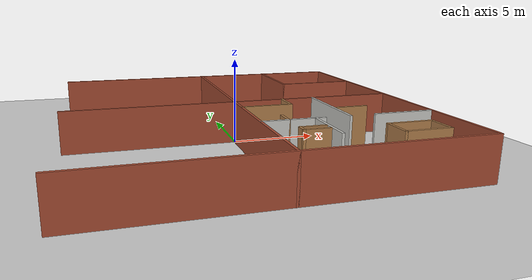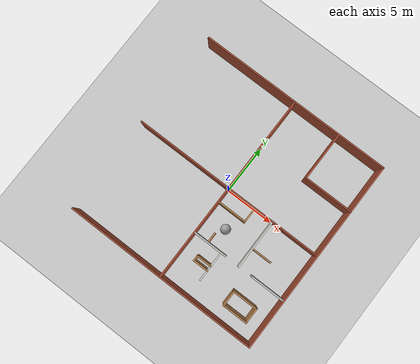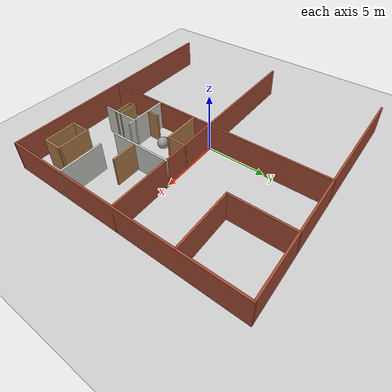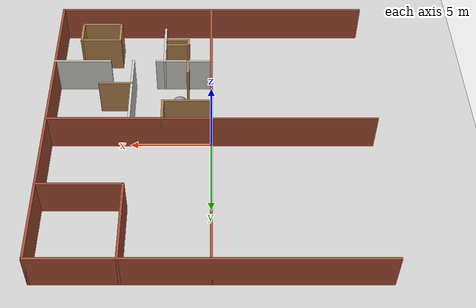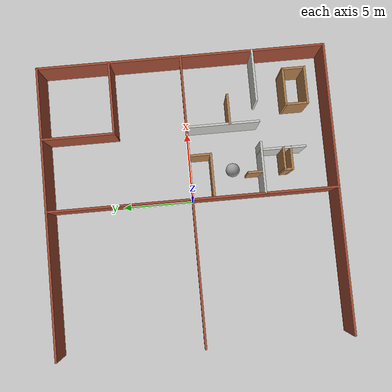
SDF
<sdf version="1.7">
 <world name="default">
  <model name="ground_plane">
   <static>1</static>
   <link name="link">
    <collision name="collision">
     <geometry><plane><normal>0 0 1</normal><size>100 100</size></plane></geometry>
     <surface>
      <contact><collide_bitmask>65535</collide_bitmask></contact>
      <friction><ode><mu>100</mu><mu2>50</mu2></ode></friction>
     </surface>
    </collision>
    <visual name="visual">
     <cast_shadows>0</cast_shadows>
     <geometry><plane><normal>0 0 1</normal><size>100 100</size></plane></geometry>
     <material>
      <script><uri>file://media/materials/scripts/gazebo.material</uri><name>Gazebo/Grey</name></script>
     </material>
    </visual>
   </link>
  </model>
  <model name="Room_Curriculum">
   <link name="Wall_0">
    <pose>0 10 0 0 -0 0</pose>
    <visual name="Wall_0_Visual">
     <pose>0 0 1.25 0 -0 0</pose>
     <geometry><box><size>20.15 0.15 2.5</size></box></geometry>
     <material>
      <script><uri>file://media/materials/scripts/gazebo.material</uri><name>Gazebo/Bricks</name></script>
      <ambient>1 1 1 1</ambient>
      <shader type="pixel"/>
     </material>
     <meta><layer>0</layer></meta>
    </visual>
    <collision name="Wall_0_Collision">
     <pose>0 0 1.25 0 -0 0</pose>
     <geometry><box><size>20.15 0.15 2.5</size></box></geometry>
     <surface>
      <friction>
       <ode><mu>1</mu><mu2>1</mu2><fdir1>0 0 0</fdir1><slip1>0</slip1><slip2>0</slip2></ode>
       <torsional>
        <coefficient>1</coefficient>
        <patch_radius>0</patch_radius>
        <surface_radius>0</surface_radius>
        <use_patch_radius>1</use_patch_radius>
        <ode><slip>0</slip></ode>
       </torsional>
      </friction>
      <bounce><restitution_coefficient>0</restitution_coefficient><threshold>1e+06</threshold></bounce>
      <contact>
       <collide_without_contact>0</collide_without_contact>
       <collide_without_contact_bitmask>1</collide_without_contact_bitmask>
       <collide_bitmask>1</collide_bitmask>
       <ode>
        <soft_cfm>0</soft_cfm>
        <soft_erp>0.2</soft_erp>
        <kp>1e+13</kp>
        <kd>1</kd>
        <max_vel>0.01</max_vel>
        <min_depth>0</min_depth>
       </ode>
       <bullet>
        <split_impulse>1</split_impulse>
        <split_impulse_penetration_threshold>-0.01</split_impulse_penetration_threshold>
        <soft_cfm>0</soft_cfm>
        <soft_erp>0.2</soft_erp>
        <kp>1e+13</kp>
        <kd>1</kd>
       </bullet>
      </contact>
     </surface>
    </collision>
   </link>
   <link name="Wall_1">
    <pose>10 0 0 0 0 -1.5708</pose>
    <visual name="Wall_1_Visual">
     <pose>0 0 1.25 0 -0 0</pose>
     <geometry><box><size>20.15 0.15 2.5</size></box></geometry>
     <material>
      <script><uri>file://media/materials/scripts/gazebo.material</uri><name>Gazebo/Bricks</name></script>
      <ambient>1 1 1 1</ambient>
      <shader type="pixel"/>
     </material>
     <meta><layer>0</layer></meta>
    </visual>
    <collision name="Wall_1_Collision">
     <pose>0 0 1.25 0 -0 0</pose>
     <geometry><box><size>20.15 0.15 2.5</size></box></geometry>
     <surface>
      <friction>
       <ode><mu>1</mu><mu2>1</mu2><fdir1>0 0 0</fdir1><slip1>0</slip1><slip2>0</slip2></ode>
       <torsional>
        <coefficient>1</coefficient>
        <patch_radius>0</patch_radius>
        <surface_radius>0</surface_radius>
        <use_patch_radius>1</use_patch_radius>
        <ode><slip>0</slip></ode>
       </torsional>
      </friction>
      <bounce><restitution_coefficient>0</restitution_coefficient><threshold>1e+06</threshold></bounce>
      <contact>
       <collide_without_contact>0</collide_without_contact>
       <collide_without_contact_bitmask>1</collide_without_contact_bitmask>
       <collide_bitmask>1</collide_bitmask>
       <ode>
        <soft_cfm>0</soft_cfm>
        <soft_erp>0.2</soft_erp>
        <kp>1e+13</kp>
        <kd>1</kd>
        <max_vel>0.01</max_vel>
        <min_depth>0</min_depth>
       </ode>
       <bullet>
        <split_impulse>1</split_impulse>
        <split_impulse_penetration_threshold>-0.01</split_impulse_penetration_threshold>
        <soft_cfm>0</soft_cfm>
        <soft_erp>0.2</soft_erp>
        <kp>1e+13</kp>
        <kd>1</kd>
       </bullet>
      </contact>
     </surface>
    </collision>
   </link>
   <link name="Wall_15">
    <pose>5 7.5 0 0 0 -1.5708</pose>
    <visual name="Wall_15_Visual">
     <pose>0 0 1.25 0 -0 0</pose>
     <geometry><box><size>5.15 0.15 2.5</size></box></geometry>
     <material>
      <script><uri>file://media/materials/scripts/gazebo.material</uri><name>Gazebo/Bricks</name></script>
      <ambient>1 1 1 1</ambient>
      <shader type="pixel"/>
     </material>
     <meta><layer>0</layer></meta>
    </visual>
    <collision name="Wall_15_Collision">
     <pose>0 0 1.25 0 -0 0</pose>
     <geometry><box><size>5.15 0.15 2.5</size></box></geometry>
     <surface>
      <friction>
       <ode><mu>1</mu><mu2>1</mu2><fdir1>0 0 0</fdir1><slip1>0</slip1><slip2>0</slip2></ode>
       <torsional>
        <coefficient>1</coefficient>
        <patch_radius>0</patch_radius>
        <surface_radius>0</surface_radius>
        <use_patch_radius>1</use_patch_radius>
        <ode><slip>0</slip></ode>
       </torsional>
      </friction>
      <bounce><restitution_coefficient>0</restitution_coefficient><threshold>1e+06</threshold></bounce>
      <contact>
       <collide_without_contact>0</collide_without_contact>
       <collide_without_contact_bitmask>1</collide_without_contact_bitmask>
       <collide_bitmask>1</collide_bitmask>
       <ode>
        <soft_cfm>0</soft_cfm>
        <soft_erp>0.2</soft_erp>
        <kp>1e+13</kp>
        <kd>1</kd>
        <max_vel>0.01</max_vel>
        <min_depth>0</min_depth>
       </ode>
       <bullet>
        <split_impulse>1</split_impulse>
        <split_impulse_penetration_threshold>-0.01</split_impulse_penetration_threshold>
        <soft_cfm>0</soft_cfm>
        <soft_erp>0.2</soft_erp>
        <kp>1e+13</kp>
        <kd>1</kd>
       </bullet>
      </contact>
     </surface>
    </collision>
   </link>
   <link name="Wall_16">
    <pose>7.5 5 0 0 -0 0</pose>
    <visual name="Wall_16_Visual">
     <pose>0 0 1.25 0 -0 0</pose>
     <geometry><box><size>5.15 0.15 2.5</size></box></geometry>
     <material>
      <script><uri>file://media/materials/scripts/gazebo.material</uri><name>Gazebo/Bricks</name></script>
      <ambient>1 1 1 1</ambient>
      <shader type="pixel"/>
     </material>
     <meta><layer>0</layer></meta>
    </visual>
    <collision name="Wall_16_Collision">
     <pose>0 0 1.25 0 -0 0</pose>
     <geometry><box><size>5.15 0.15 2.5</size></box></geometry>
     <surface>
      <friction>
       <ode><mu>1</mu><mu2>1</mu2><fdir1>0 0 0</fdir1><slip1>0</slip1><slip2>0</slip2></ode>
       <torsional>
        <coefficient>1</coefficient>
        <patch_radius>0</patch_radius>
        <surface_radius>0</surface_radius>
        <use_patch_radius>1</use_patch_radius>
        <ode><slip>0</slip></ode>
       </torsional>
      </friction>
      <bounce><restitution_coefficient>0</restitution_coefficient><threshold>1e+06</threshold></bounce>
      <contact>
       <collide_without_contact>0</collide_without_contact>
       <collide_without_contact_bitmask>1</collide_without_contact_bitmask>
       <collide_bitmask>1</collide_bitmask>
       <ode>
        <soft_cfm>0</soft_cfm>
        <soft_erp>0.2</soft_erp>
        <kp>1e+13</kp>
        <kd>1</kd>
        <max_vel>0.01</max_vel>
        <min_depth>0</min_depth>
       </ode>
       <bullet>
        <split_impulse>1</split_impulse>
        <split_impulse_penetration_threshold>-0.01</split_impulse_penetration_threshold>
        <soft_cfm>0</soft_cfm>
        <soft_erp>0.2</soft_erp>
        <kp>1e+13</kp>
        <kd>1</kd>
       </bullet>
      </contact>
     </surface>
    </collision>
   </link>
   <link name="Wall_2">
    <pose>0 -10 0 0 -0 3.14159</pose>
    <visual name="Wall_2_Visual">
     <pose>0 0 1.25 0 -0 0</pose>
     <geometry><box><size>20.15 0.15 2.5</size></box></geometry>
     <material>
      <script><uri>file://media/materials/scripts/gazebo.material</uri><name>Gazebo/Bricks</name></script>
      <ambient>1 1 1 1</ambient>
      <shader type="pixel"/>
     </material>
     <meta><layer>0</layer></meta>
    </visual>
    <collision name="Wall_2_Collision">
     <pose>0 0 1.25 0 -0 0</pose>
     <geometry><box><size>20.15 0.15 2.5</size></box></geometry>
     <surface>
      <friction>
       <ode><mu>1</mu><mu2>1</mu2><fdir1>0 0 0</fdir1><slip1>0</slip1><slip2>0</slip2></ode>
       <torsional>
        <coefficient>1</coefficient>
        <patch_radius>0</patch_radius>
        <surface_radius>0</surface_radius>
        <use_patch_radius>1</use_patch_radius>
        <ode><slip>0</slip></ode>
       </torsional>
      </friction>
      <bounce><restitution_coefficient>0</restitution_coefficient><threshold>1e+06</threshold></bounce>
      <contact>
       <collide_without_contact>0</collide_without_contact>
       <collide_without_contact_bitmask>1</collide_without_contact_bitmask>
       <collide_bitmask>1</collide_bitmask>
       <ode>
        <soft_cfm>0</soft_cfm>
        <soft_erp>0.2</soft_erp>
        <kp>1e+13</kp>
        <kd>1</kd>
        <max_vel>0.01</max_vel>
        <min_depth>0</min_depth>
       </ode>
       <bullet>
        <split_impulse>1</split_impulse>
        <split_impulse_penetration_threshold>-0.01</split_impulse_penetration_threshold>
        <soft_cfm>0</soft_cfm>
        <soft_erp>0.2</soft_erp>
        <kp>1e+13</kp>
        <kd>1</kd>
       </bullet>
      </contact>
     </surface>
    </collision>
   </link>
   <link name="Wall_5">
    <pose>0 0 0 0 0 -1.5708</pose>
    <visual name="Wall_5_Visual">
     <pose>0 0 1.25 0 -0 0</pose>
     <geometry><box><size>20.15 0.15 2.5</size></box></geometry>
     <material>
      <script><uri>file://media/materials/scripts/gazebo.material</uri><name>Gazebo/Bricks</name></script>
      <ambient>1 1 1 1</ambient>
      <shader type="pixel"/>
     </material>
     <meta><layer>0</layer></meta>
    </visual>
    <collision name="Wall_5_Collision">
     <pose>0 0 1.25 0 -0 0</pose>
     <geometry><box><size>20.15 0.15 2.5</size></box></geometry>
     <surface>
      <friction>
       <ode><mu>1</mu><mu2>1</mu2><fdir1>0 0 0</fdir1><slip1>0</slip1><slip2>0</slip2></ode>
       <torsional>
        <coefficient>1</coefficient>
        <patch_radius>0</patch_radius>
        <surface_radius>0</surface_radius>
        <use_patch_radius>1</use_patch_radius>
        <ode><slip>0</slip></ode>
       </torsional>
      </friction>
      <bounce><restitution_coefficient>0</restitution_coefficient><threshold>1e+06</threshold></bounce>
      <contact>
       <collide_without_contact>0</collide_without_contact>
       <collide_without_contact_bitmask>1</collide_without_contact_bitmask>
       <collide_bitmask>1</collide_bitmask>
       <ode>
        <soft_cfm>0</soft_cfm>
        <soft_erp>0.2</soft_erp>
        <kp>1e+13</kp>
        <kd>1</kd>
        <max_vel>0.01</max_vel>
        <min_depth>0</min_depth>
       </ode>
       <bullet>
        <split_impulse>1</split_impulse>
        <split_impulse_penetration_threshold>-0.01</split_impulse_penetration_threshold>
        <soft_cfm>0</soft_cfm>
        <soft_erp>0.2</soft_erp>
        <kp>1e+13</kp>
        <kd>1</kd>
       </bullet>
      </contact>
     </surface>
    </collision>
   </link>
   <link name="Wall_52">
    <pose>5 -2.5 0 0 0 -1.5708</pose>
    <visual name="Wall_52_Visual">
     <pose>0 0 1.25 0 -0 0</pose>
     <geometry><box><size>5.15 0.15 2.5</size></box></geometry>
     <material>
      <script><uri>file://media/materials/scripts/gazebo.material</uri><name>Gazebo/CeilingTiled</name></script>
      <ambient>1 1 1 1</ambient>
      <shader type="pixel"/>
     </material>
     <meta><layer>0</layer></meta>
    </visual>
    <collision name="Wall_52_Collision">
     <pose>0 0 1.25 0 -0 0</pose>
     <geometry><box><size>5.15 0.15 2.5</size></box></geometry>
     <surface>
      <friction>
       <ode><mu>1</mu><mu2>1</mu2><fdir1>0 0 0</fdir1><slip1>0</slip1><slip2>0</slip2></ode>
       <torsional>
        <coefficient>1</coefficient>
        <patch_radius>0</patch_radius>
        <surface_radius>0</surface_radius>
        <use_patch_radius>1</use_patch_radius>
        <ode><slip>0</slip></ode>
       </torsional>
      </friction>
      <bounce><restitution_coefficient>0</restitution_coefficient><threshold>1e+06</threshold></bounce>
      <contact>
       <collide_without_contact>0</collide_without_contact>
       <collide_without_contact_bitmask>1</collide_without_contact_bitmask>
       <collide_bitmask>1</collide_bitmask>
       <ode>
        <soft_cfm>0</soft_cfm>
        <soft_erp>0.2</soft_erp>
        <kp>1e+13</kp>
        <kd>1</kd>
        <max_vel>0.01</max_vel>
        <min_depth>0</min_depth>
       </ode>
       <bullet>
        <split_impulse>1</split_impulse>
        <split_impulse_penetration_threshold>-0.01</split_impulse_penetration_threshold>
        <soft_cfm>0</soft_cfm>
        <soft_erp>0.2</soft_erp>
        <kp>1e+13</kp>
        <kd>1</kd>
       </bullet>
      </contact>
     </surface>
    </collision>
   </link>
   <link name="Wall_54">
    <pose>6 -3 0 0 -0 0</pose>
    <visual name="Wall_54_Visual">
     <pose>0 0 1.25 0 -0 0</pose>
     <geometry><box><size>2.15 0.15 2.5</size></box></geometry>
     <material>
      <script><uri>file://media/materials/scripts/gazebo.material</uri><name>Gazebo/Wood</name></script>
      <ambient>1 1 1 1</ambient>
      <shader type="pixel"/>
     </material>
     <meta><layer>0</layer></meta>
    </visual>
    <collision name="Wall_54_Collision">
     <pose>0 0 1.25 0 -0 0</pose>
     <geometry><box><size>2.15 0.15 2.5</size></box></geometry>
     <surface>
      <friction>
       <ode><mu>1</mu><mu2>1</mu2><fdir1>0 0 0</fdir1><slip1>0</slip1><slip2>0</slip2></ode>
       <torsional>
        <coefficient>1</coefficient>
        <patch_radius>0</patch_radius>
        <surface_radius>0</surface_radius>
        <use_patch_radius>1</use_patch_radius>
        <ode><slip>0</slip></ode>
       </torsional>
      </friction>
      <bounce><restitution_coefficient>0</restitution_coefficient><threshold>1e+06</threshold></bounce>
      <contact>
       <collide_without_contact>0</collide_without_contact>
       <collide_without_contact_bitmask>1</collide_without_contact_bitmask>
       <collide_bitmask>1</collide_bitmask>
       <ode>
        <soft_cfm>0</soft_cfm>
        <soft_erp>0.2</soft_erp>
        <kp>1e+13</kp>
        <kd>1</kd>
        <max_vel>0.01</max_vel>
        <min_depth>0</min_depth>
       </ode>
       <bullet>
        <split_impulse>1</split_impulse>
        <split_impulse_penetration_threshold>-0.01</split_impulse_penetration_threshold>
        <soft_cfm>0</soft_cfm>
        <soft_erp>0.2</soft_erp>
        <kp>1e+13</kp>
        <kd>1</kd>
       </bullet>
      </contact>
     </surface>
    </collision>
   </link>
   <link name="Wall_59">
    <pose>1.75 -5 0 0 -0 0</pose>
    <visual name="Wall_59_Visual">
     <pose>0 0 1.25 0 -0 0</pose>
     <geometry><box><size>3.65 0.15 2.5</size></box></geometry>
     <material>
      <script><uri>file://media/materials/scripts/gazebo.material</uri><name>Gazebo/CeilingTiled</name></script>
      <ambient>1 1 1 1</ambient>
      <shader type="pixel"/>
     </material>
     <meta><layer>0</layer></meta>
    </visual>
    <collision name="Wall_59_Collision">
     <pose>0 0 1.25 0 -0 0</pose>
     <geometry><box><size>3.65 0.15 2.5</size></box></geometry>
     <surface>
      <friction>
       <ode><mu>1</mu><mu2>1</mu2><fdir1>0 0 0</fdir1><slip1>0</slip1><slip2>0</slip2></ode>
       <torsional>
        <coefficient>1</coefficient>
        <patch_radius>0</patch_radius>
        <surface_radius>0</surface_radius>
        <use_patch_radius>1</use_patch_radius>
        <ode><slip>0</slip></ode>
       </torsional>
      </friction>
      <bounce><restitution_coefficient>0</restitution_coefficient><threshold>1e+06</threshold></bounce>
      <contact>
       <collide_without_contact>0</collide_without_contact>
       <collide_without_contact_bitmask>1</collide_without_contact_bitmask>
       <collide_bitmask>1</collide_bitmask>
       <ode>
        <soft_cfm>0</soft_cfm>
        <soft_erp>0.2</soft_erp>
        <kp>1e+13</kp>
        <kd>1</kd>
        <max_vel>0.01</max_vel>
        <min_depth>0</min_depth>
       </ode>
       <bullet>
        <split_impulse>1</split_impulse>
        <split_impulse_penetration_threshold>-0.01</split_impulse_penetration_threshold>
        <soft_cfm>0</soft_cfm>
        <soft_erp>0.2</soft_erp>
        <kp>1e+13</kp>
        <kd>1</kd>
       </bullet>
      </contact>
     </surface>
    </collision>
   </link>
   <link name="Wall_61">
    <pose>8.25 -5 0 0 -0 3.14159</pose>
    <visual name="Wall_61_Visual">
     <pose>0 0 1.25 0 -0 0</pose>
     <geometry><box><size>3.65 0.15 2.5</size></box></geometry>
     <material>
      <script><uri>file://media/materials/scripts/gazebo.material</uri><name>Gazebo/CeilingTiled</name></script>
      <ambient>1 1 1 1</ambient>
      <shader type="pixel"/>
     </material>
     <meta><layer>0</layer></meta>
    </visual>
    <collision name="Wall_61_Collision">
     <pose>0 0 1.25 0 -0 0</pose>
     <geometry><box><size>3.65 0.15 2.5</size></box></geometry>
     <surface>
      <friction>
       <ode><mu>1</mu><mu2>1</mu2><fdir1>0 0 0</fdir1><slip1>0</slip1><slip2>0</slip2></ode>
       <torsional>
        <coefficient>1</coefficient>
        <patch_radius>0</patch_radius>
        <surface_radius>0</surface_radius>
        <use_patch_radius>1</use_patch_radius>
        <ode><slip>0</slip></ode>
       </torsional>
      </friction>
      <bounce><restitution_coefficient>0</restitution_coefficient><threshold>1e+06</threshold></bounce>
      <contact>
       <collide_without_contact>0</collide_without_contact>
       <collide_without_contact_bitmask>1</collide_without_contact_bitmask>
       <collide_bitmask>1</collide_bitmask>
       <ode>
        <soft_cfm>0</soft_cfm>
        <soft_erp>0.2</soft_erp>
        <kp>1e+13</kp>
        <kd>1</kd>
        <max_vel>0.01</max_vel>
        <min_depth>0</min_depth>
       </ode>
       <bullet>
        <split_impulse>1</split_impulse>
        <split_impulse_penetration_threshold>-0.01</split_impulse_penetration_threshold>
        <soft_cfm>0</soft_cfm>
        <soft_erp>0.2</soft_erp>
        <kp>1e+13</kp>
        <kd>1</kd>
       </bullet>
      </contact>
     </surface>
    </collision>
   </link>
   <link name="Wall_63">
    <pose>1.5 -4.5 0 0 0 -1.5708</pose>
    <visual name="Wall_63_Visual">
     <pose>0 0 1.25 0 -0 0</pose>
     <geometry><box><size>1.15 0.15 2.5</size></box></geometry>
     <material>
      <script><uri>file://media/materials/scripts/gazebo.material</uri><name>Gazebo/Wood</name></script>
      <ambient>1 1 1 1</ambient>
      <shader type="pixel"/>
     </material>
     <meta><layer>0</layer></meta>
    </visual>
    <collision name="Wall_63_Collision">
     <pose>0 0 1.25 0 -0 0</pose>
     <geometry><box><size>1.15 0.15 2.5</size></box></geometry>
     <surface>
      <friction>
       <ode><mu>1</mu><mu2>1</mu2><fdir1>0 0 0</fdir1><slip1>0</slip1><slip2>0</slip2></ode>
       <torsional>
        <coefficient>1</coefficient>
        <patch_radius>0</patch_radius>
        <surface_radius>0</surface_radius>
        <use_patch_radius>1</use_patch_radius>
        <ode><slip>0</slip></ode>
       </torsional>
      </friction>
      <bounce><restitution_coefficient>0</restitution_coefficient><threshold>1e+06</threshold></bounce>
      <contact>
       <collide_without_contact>0</collide_without_contact>
       <collide_without_contact_bitmask>1</collide_without_contact_bitmask>
       <collide_bitmask>1</collide_bitmask>
       <ode>
        <soft_cfm>0</soft_cfm>
        <soft_erp>0.2</soft_erp>
        <kp>1e+13</kp>
        <kd>1</kd>
        <max_vel>0.01</max_vel>
        <min_depth>0</min_depth>
       </ode>
       <bullet>
        <split_impulse>1</split_impulse>
        <split_impulse_penetration_threshold>-0.01</split_impulse_penetration_threshold>
        <soft_cfm>0</soft_cfm>
        <soft_erp>0.2</soft_erp>
        <kp>1e+13</kp>
        <kd>1</kd>
       </bullet>
      </contact>
     </surface>
    </collision>
   </link>
   <link name="Wall_65">
    <pose>3 -6.5 0 0 0 -1.5708</pose>
    <visual name="Wall_65_Visual">
     <pose>0 0 1.25 0 -0 0</pose>
     <geometry><box><size>3.15 0.15 2.5</size></box></geometry>
     <material>
      <script><uri>file://media/materials/scripts/gazebo.material</uri><name>Gazebo/CeilingTiled</name></script>
      <ambient>1 1 1 1</ambient>
      <shader type="pixel"/>
     </material>
     <meta><layer>0</layer></meta>
    </visual>
    <collision name="Wall_65_Collision">
     <pose>0 0 1.25 0 -0 0</pose>
     <geometry><box><size>3.15 0.15 2.5</size></box></geometry>
     <surface>
      <friction>
       <ode><mu>1</mu><mu2>1</mu2><fdir1>0 0 0</fdir1><slip1>0</slip1><slip2>0</slip2></ode>
       <torsional>
        <coefficient>1</coefficient>
        <patch_radius>0</patch_radius>
        <surface_radius>0</surface_radius>
        <use_patch_radius>1</use_patch_radius>
        <ode><slip>0</slip></ode>
       </torsional>
      </friction>
      <bounce><restitution_coefficient>0</restitution_coefficient><threshold>1e+06</threshold></bounce>
      <contact>
       <collide_without_contact>0</collide_without_contact>
       <collide_without_contact_bitmask>1</collide_without_contact_bitmask>
       <collide_bitmask>1</collide_bitmask>
       <ode>
        <soft_cfm>0</soft_cfm>
        <soft_erp>0.2</soft_erp>
        <kp>1e+13</kp>
        <kd>1</kd>
        <max_vel>0.01</max_vel>
        <min_depth>0</min_depth>
       </ode>
       <bullet>
        <split_impulse>1</split_impulse>
        <split_impulse_penetration_threshold>-0.01</split_impulse_penetration_threshold>
        <soft_cfm>0</soft_cfm>
        <soft_erp>0.2</soft_erp>
        <kp>1e+13</kp>
        <kd>1</kd>
       </bullet>
      </contact>
     </surface>
    </collision>
   </link>
   <link name="Wall_67">
    <pose>2.25 -7 0 0 -0 3.14159</pose>
    <visual name="Wall_67_Visual">
     <pose>0 0 1.25 0 -0 0</pose>
     <geometry><box><size>1.65 0.15 2.5</size></box></geometry>
     <material>
      <script><uri>file://media/materials/scripts/gazebo.material</uri><name>Gazebo/Wood</name></script>
      <ambient>1 1 1 1</ambient>
      <shader type="pixel"/>
     </material>
     <meta><layer>0</layer></meta>
    </visual>
    <collision name="Wall_67_Collision">
     <pose>0 0 1.25 0 -0 0</pose>
     <geometry><box><size>1.65 0.15 2.5</size></box></geometry>
     <surface>
      <friction>
       <ode><mu>1</mu><mu2>1</mu2><fdir1>0 0 0</fdir1><slip1>0</slip1><slip2>0</slip2></ode>
       <torsional>
        <coefficient>1</coefficient>
        <patch_radius>0</patch_radius>
        <surface_radius>0</surface_radius>
        <use_patch_radius>1</use_patch_radius>
        <ode><slip>0</slip></ode>
       </torsional>
      </friction>
      <bounce><restitution_coefficient>0</restitution_coefficient><threshold>1e+06</threshold></bounce>
      <contact>
       <collide_without_contact>0</collide_without_contact>
       <collide_without_contact_bitmask>1</collide_without_contact_bitmask>
       <collide_bitmask>1</collide_bitmask>
       <ode>
        <soft_cfm>0</soft_cfm>
        <soft_erp>0.2</soft_erp>
        <kp>1e+13</kp>
        <kd>1</kd>
        <max_vel>0.01</max_vel>
        <min_depth>0</min_depth>
       </ode>
       <bullet>
        <split_impulse>1</split_impulse>
        <split_impulse_penetration_threshold>-0.01</split_impulse_penetration_threshold>
        <soft_cfm>0</soft_cfm>
        <soft_erp>0.2</soft_erp>
        <kp>1e+13</kp>
        <kd>1</kd>
       </bullet>
      </contact>
     </surface>
    </collision>
   </link>
   <link name="Wall_68">
    <pose>1.5 -6.75 0 0 -0 1.5708</pose>
    <visual name="Wall_68_Visual">
     <pose>0 0 1.25 0 -0 0</pose>
     <geometry><box><size>0.65 0.15 2.5</size></box></geometry>
     <material>
      <script><uri>file://media/materials/scripts/gazebo.material</uri><name>Gazebo/Wood</name></script>
      <ambient>1 1 1 1</ambient>
      <shader type="pixel"/>
     </material>
     <meta><layer>0</layer></meta>
    </visual>
    <collision name="Wall_68_Collision">
     <pose>0 0 1.25 0 -0 0</pose>
     <geometry><box><size>0.65 0.15 2.5</size></box></geometry>
     <surface>
      <friction>
       <ode><mu>1</mu><mu2>1</mu2><fdir1>0 0 0</fdir1><slip1>0</slip1><slip2>0</slip2></ode>
       <torsional>
        <coefficient>1</coefficient>
        <patch_radius>0</patch_radius>
        <surface_radius>0</surface_radius>
        <use_patch_radius>1</use_patch_radius>
        <ode><slip>0</slip></ode>
       </torsional>
      </friction>
      <bounce><restitution_coefficient>0</restitution_coefficient><threshold>1e+06</threshold></bounce>
      <contact>
       <collide_without_contact>0</collide_without_contact>
       <collide_without_contact_bitmask>1</collide_without_contact_bitmask>
       <collide_bitmask>1</collide_bitmask>
       <ode>
        <soft_cfm>0</soft_cfm>
        <soft_erp>0.2</soft_erp>
        <kp>1e+13</kp>
        <kd>1</kd>
        <max_vel>0.01</max_vel>
        <min_depth>0</min_depth>
       </ode>
       <bullet>
        <split_impulse>1</split_impulse>
        <split_impulse_penetration_threshold>-0.01</split_impulse_penetration_threshold>
        <soft_cfm>0</soft_cfm>
        <soft_erp>0.2</soft_erp>
        <kp>1e+13</kp>
        <kd>1</kd>
       </bullet>
      </contact>
     </surface>
    </collision>
   </link>
   <link name="Wall_69">
    <pose>2.25 -6.5 0 0 -0 0</pose>
    <visual name="Wall_69_Visual">
     <pose>0 0 1.25 0 -0 0</pose>
     <geometry><box><size>1.65 0.15 2.5</size></box></geometry>
     <material>
      <script><uri>file://media/materials/scripts/gazebo.material</uri><name>Gazebo/Wood</name></script>
      <ambient>1 1 1 1</ambient>
      <shader type="pixel"/>
     </material>
     <meta><layer>0</layer></meta>
    </visual>
    <collision name="Wall_69_Collision">
     <pose>0 0 1.25 0 -0 0</pose>
     <geometry><box><size>1.65 0.15 2.5</size></box></geometry>
     <surface>
      <friction>
       <ode><mu>1</mu><mu2>1</mu2><fdir1>0 0 0</fdir1><slip1>0</slip1><slip2>0</slip2></ode>
       <torsional>
        <coefficient>1</coefficient>
        <patch_radius>0</patch_radius>
        <surface_radius>0</surface_radius>
        <use_patch_radius>1</use_patch_radius>
        <ode><slip>0</slip></ode>
       </torsional>
      </friction>
      <bounce><restitution_coefficient>0</restitution_coefficient><threshold>1e+06</threshold></bounce>
      <contact>
       <collide_without_contact>0</collide_without_contact>
       <collide_without_contact_bitmask>1</collide_without_contact_bitmask>
       <collide_bitmask>1</collide_bitmask>
       <ode>
        <soft_cfm>0</soft_cfm>
        <soft_erp>0.2</soft_erp>
        <kp>1e+13</kp>
        <kd>1</kd>
        <max_vel>0.01</max_vel>
        <min_depth>0</min_depth>
       </ode>
       <bullet>
        <split_impulse>1</split_impulse>
        <split_impulse_penetration_threshold>-0.01</split_impulse_penetration_threshold>
        <soft_cfm>0</soft_cfm>
        <soft_erp>0.2</soft_erp>
        <kp>1e+13</kp>
        <kd>1</kd>
       </bullet>
      </contact>
     </surface>
    </collision>
   </link>
   <link name="Wall_7">
    <visual name="Wall_7_Visual">
     <pose>0 0 1.25 0 -0 0</pose>
     <geometry><box><size>20.15 0.15 2.5</size></box></geometry>
     <material>
      <script><uri>file://media/materials/scripts/gazebo.material</uri><name>Gazebo/Bricks</name></script>
      <ambient>1 1 1 1</ambient>
      <shader type="pixel"/>
     </material>
     <meta><layer>0</layer></meta>
    </visual>
    <collision name="Wall_7_Collision">
     <pose>0 0 1.25 0 -0 0</pose>
     <geometry><box><size>20.15 0.15 2.5</size></box></geometry>
     <surface>
      <friction>
       <ode><mu>1</mu><mu2>1</mu2><fdir1>0 0 0</fdir1><slip1>0</slip1><slip2>0</slip2></ode>
       <torsional>
        <coefficient>1</coefficient>
        <patch_radius>0</patch_radius>
        <surface_radius>0</surface_radius>
        <use_patch_radius>1</use_patch_radius>
        <ode><slip>0</slip></ode>
       </torsional>
      </friction>
      <bounce><restitution_coefficient>0</restitution_coefficient><threshold>1e+06</threshold></bounce>
      <contact>
       <collide_without_contact>0</collide_without_contact>
       <collide_without_contact_bitmask>1</collide_without_contact_bitmask>
       <collide_bitmask>1</collide_bitmask>
       <ode>
        <soft_cfm>0</soft_cfm>
        <soft_erp>0.2</soft_erp>
        <kp>1e+13</kp>
        <kd>1</kd>
        <max_vel>0.01</max_vel>
        <min_depth>0</min_depth>
       </ode>
       <bullet>
        <split_impulse>1</split_impulse>
        <split_impulse_penetration_threshold>-0.01</split_impulse_penetration_threshold>
        <soft_cfm>0</soft_cfm>
        <soft_erp>0.2</soft_erp>
        <kp>1e+13</kp>
        <kd>1</kd>
       </bullet>
      </contact>
     </surface>
    </collision>
   </link>
   <link name="Wall_71">
    <pose>6 -7.75 0 0 0 -1.5708</pose>
    <visual name="Wall_71_Visual">
     <pose>0 0 1.25 0 -0 0</pose>
     <geometry><box><size>1.65 0.15 2.5</size></box></geometry>
     <material>
      <script><uri>file://media/materials/scripts/gazebo.material</uri><name>Gazebo/Wood</name></script>
      <ambient>1 1 1 1</ambient>
      <shader type="pixel"/>
     </material>
     <meta><layer>0</layer></meta>
    </visual>
    <collision name="Wall_71_Collision">
     <pose>0 0 1.25 0 -0 0</pose>
     <geometry><box><size>1.65 0.15 2.5</size></box></geometry>
     <surface>
      <friction>
       <ode><mu>1</mu><mu2>1</mu2><fdir1>0 0 0</fdir1><slip1>0</slip1><slip2>0</slip2></ode>
       <torsional>
        <coefficient>1</coefficient>
        <patch_radius>0</patch_radius>
        <surface_radius>0</surface_radius>
        <use_patch_radius>1</use_patch_radius>
        <ode><slip>0</slip></ode>
       </torsional>
      </friction>
      <bounce><restitution_coefficient>0</restitution_coefficient><threshold>1e+06</threshold></bounce>
      <contact>
       <collide_without_contact>0</collide_without_contact>
       <collide_without_contact_bitmask>1</collide_without_contact_bitmask>
       <collide_bitmask>1</collide_bitmask>
       <ode>
        <soft_cfm>0</soft_cfm>
        <soft_erp>0.2</soft_erp>
        <kp>1e+13</kp>
        <kd>1</kd>
        <max_vel>0.01</max_vel>
        <min_depth>0</min_depth>
       </ode>
       <bullet>
        <split_impulse>1</split_impulse>
        <split_impulse_penetration_threshold>-0.01</split_impulse_penetration_threshold>
        <soft_cfm>0</soft_cfm>
        <soft_erp>0.2</soft_erp>
        <kp>1e+13</kp>
        <kd>1</kd>
       </bullet>
      </contact>
     </surface>
    </collision>
   </link>
   <link name="Wall_72">
    <pose>7.25 -8.5 0 0 -0 0</pose>
    <visual name="Wall_72_Visual">
     <pose>0 0 1.25 0 -0 0</pose>
     <geometry><box><size>2.65 0.15 2.5</size></box></geometry>
     <material>
      <script><uri>file://media/materials/scripts/gazebo.material</uri><name>Gazebo/Wood</name></script>
      <ambient>1 1 1 1</ambient>
      <shader type="pixel"/>
     </material>
     <meta><layer>0</layer></meta>
    </visual>
    <collision name="Wall_72_Collision">
     <pose>0 0 1.25 0 -0 0</pose>
     <geometry><box><size>2.65 0.15 2.5</size></box></geometry>
     <surface>
      <friction>
       <ode><mu>1</mu><mu2>1</mu2><fdir1>0 0 0</fdir1><slip1>0</slip1><slip2>0</slip2></ode>
       <torsional>
        <coefficient>1</coefficient>
        <patch_radius>0</patch_radius>
        <surface_radius>0</surface_radius>
        <use_patch_radius>1</use_patch_radius>
        <ode><slip>0</slip></ode>
       </torsional>
      </friction>
      <bounce><restitution_coefficient>0</restitution_coefficient><threshold>1e+06</threshold></bounce>
      <contact>
       <collide_without_contact>0</collide_without_contact>
       <collide_without_contact_bitmask>1</collide_without_contact_bitmask>
       <collide_bitmask>1</collide_bitmask>
       <ode>
        <soft_cfm>0</soft_cfm>
        <soft_erp>0.2</soft_erp>
        <kp>1e+13</kp>
        <kd>1</kd>
        <max_vel>0.01</max_vel>
        <min_depth>0</min_depth>
       </ode>
       <bullet>
        <split_impulse>1</split_impulse>
        <split_impulse_penetration_threshold>-0.01</split_impulse_penetration_threshold>
        <soft_cfm>0</soft_cfm>
        <soft_erp>0.2</soft_erp>
        <kp>1e+13</kp>
        <kd>1</kd>
       </bullet>
      </contact>
     </surface>
    </collision>
   </link>
   <link name="Wall_73">
    <pose>8.5 -7.75 0 0 -0 1.5708</pose>
    <visual name="Wall_73_Visual">
     <pose>0 0 1.25 0 -0 0</pose>
     <geometry><box><size>1.65 0.15 2.5</size></box></geometry>
     <material>
      <script><uri>file://media/materials/scripts/gazebo.material</uri><name>Gazebo/Wood</name></script>
      <ambient>1 1 1 1</ambient>
      <shader type="pixel"/>
     </material>
     <meta><layer>0</layer></meta>
    </visual>
    <collision name="Wall_73_Collision">
     <pose>0 0 1.25 0 -0 0</pose>
     <geometry><box><size>1.65 0.15 2.5</size></box></geometry>
     <surface>
      <friction>
       <ode><mu>1</mu><mu2>1</mu2><fdir1>0 0 0</fdir1><slip1>0</slip1><slip2>0</slip2></ode>
       <torsional>
        <coefficient>1</coefficient>
        <patch_radius>0</patch_radius>
        <surface_radius>0</surface_radius>
        <use_patch_radius>1</use_patch_radius>
        <ode><slip>0</slip></ode>
       </torsional>
      </friction>
      <bounce><restitution_coefficient>0</restitution_coefficient><threshold>1e+06</threshold></bounce>
      <contact>
       <collide_without_contact>0</collide_without_contact>
       <collide_without_contact_bitmask>1</collide_without_contact_bitmask>
       <collide_bitmask>1</collide_bitmask>
       <ode>
        <soft_cfm>0</soft_cfm>
        <soft_erp>0.2</soft_erp>
        <kp>1e+13</kp>
        <kd>1</kd>
        <max_vel>0.01</max_vel>
        <min_depth>0</min_depth>
       </ode>
       <bullet>
        <split_impulse>1</split_impulse>
        <split_impulse_penetration_threshold>-0.01</split_impulse_penetration_threshold>
        <soft_cfm>0</soft_cfm>
        <soft_erp>0.2</soft_erp>
        <kp>1e+13</kp>
        <kd>1</kd>
       </bullet>
      </contact>
     </surface>
    </collision>
   </link>
   <link name="Wall_74">
    <pose>7.25 -7 0 0 -0 3.14159</pose>
    <visual name="Wall_74_Visual">
     <pose>0 0 1.25 0 -0 0</pose>
     <geometry><box><size>2.65 0.15 2.5</size></box></geometry>
     <material>
      <script><uri>file://media/materials/scripts/gazebo.material</uri><name>Gazebo/Wood</name></script>
      <ambient>1 1 1 1</ambient>
      <shader type="pixel"/>
     </material>
     <meta><layer>0</layer></meta>
    </visual>
    <collision name="Wall_74_Collision">
     <pose>0 0 1.25 0 -0 0</pose>
     <geometry><box><size>2.65 0.15 2.5</size></box></geometry>
     <surface>
      <friction>
       <ode><mu>1</mu><mu2>1</mu2><fdir1>0 0 0</fdir1><slip1>0</slip1><slip2>0</slip2></ode>
       <torsional>
        <coefficient>1</coefficient>
        <patch_radius>0</patch_radius>
        <surface_radius>0</surface_radius>
        <use_patch_radius>1</use_patch_radius>
        <ode><slip>0</slip></ode>
       </torsional>
      </friction>
      <bounce><restitution_coefficient>0</restitution_coefficient><threshold>1e+06</threshold></bounce>
      <contact>
       <collide_without_contact>0</collide_without_contact>
       <collide_without_contact_bitmask>1</collide_without_contact_bitmask>
       <collide_bitmask>1</collide_bitmask>
       <ode>
        <soft_cfm>0</soft_cfm>
        <soft_erp>0.2</soft_erp>
        <kp>1e+13</kp>
        <kd>1</kd>
        <max_vel>0.01</max_vel>
        <min_depth>0</min_depth>
       </ode>
       <bullet>
        <split_impulse>1</split_impulse>
        <split_impulse_penetration_threshold>-0.01</split_impulse_penetration_threshold>
        <soft_cfm>0</soft_cfm>
        <soft_erp>0.2</soft_erp>
        <kp>1e+13</kp>
        <kd>1</kd>
       </bullet>
      </contact>
     </surface>
    </collision>
   </link>
   <link name="Wall_76">
    <pose>3 -0.75 0 0 0 -1.5708</pose>
    <visual name="Wall_76_Visual">
     <pose>0 0 1.25 0 -0 0</pose>
     <geometry><box><size>1.65 0.15 2.5</size></box></geometry>
     <material>
      <script><uri>file://media/materials/scripts/gazebo.material</uri><name>Gazebo/Wood</name></script>
      <ambient>1 1 1 1</ambient>
      <shader type="pixel"/>
     </material>
     <meta><layer>0</layer></meta>
    </visual>
    <collision name="Wall_76_Collision">
     <pose>0 0 1.25 0 -0 0</pose>
     <geometry><box><size>1.65 0.15 2.5</size></box></geometry>
     <surface>
      <friction>
       <ode><mu>1</mu><mu2>1</mu2><fdir1>0 0 0</fdir1><slip1>0</slip1><slip2>0</slip2></ode>
       <torsional>
        <coefficient>1</coefficient>
        <patch_radius>0</patch_radius>
        <surface_radius>0</surface_radius>
        <use_patch_radius>1</use_patch_radius>
        <ode><slip>0</slip></ode>
       </torsional>
      </friction>
      <bounce><restitution_coefficient>0</restitution_coefficient><threshold>1e+06</threshold></bounce>
      <contact>
       <collide_without_contact>0</collide_without_contact>
       <collide_without_contact_bitmask>1</collide_without_contact_bitmask>
       <collide_bitmask>1</collide_bitmask>
       <ode>
        <soft_cfm>0</soft_cfm>
        <soft_erp>0.2</soft_erp>
        <kp>1e+13</kp>
        <kd>1</kd>
        <max_vel>0.01</max_vel>
        <min_depth>0</min_depth>
       </ode>
       <bullet>
        <split_impulse>1</split_impulse>
        <split_impulse_penetration_threshold>-0.01</split_impulse_penetration_threshold>
        <soft_cfm>0</soft_cfm>
        <soft_erp>0.2</soft_erp>
        <kp>1e+13</kp>
        <kd>1</kd>
       </bullet>
      </contact>
     </surface>
    </collision>
   </link>
   <link name="Wall_77">
    <pose>1.5 -1.5 0 0 -0 3.14159</pose>
    <visual name="Wall_77_Visual">
     <pose>0 0 1.25 0 -0 0</pose>
     <geometry><box><size>3.15 0.15 2.5</size></box></geometry>
     <material>
      <script><uri>file://media/materials/scripts/gazebo.material</uri><name>Gazebo/Wood</name></script>
      <ambient>1 1 1 1</ambient>
      <shader type="pixel"/>
     </material>
     <meta><layer>0</layer></meta>
    </visual>
    <collision name="Wall_77_Collision">
     <pose>0 0 1.25 0 -0 0</pose>
     <geometry><box><size>3.15 0.15 2.5</size></box></geometry>
     <surface>
      <friction>
       <ode><mu>1</mu><mu2>1</mu2><fdir1>0 0 0</fdir1><slip1>0</slip1><slip2>0</slip2></ode>
       <torsional>
        <coefficient>1</coefficient>
        <patch_radius>0</patch_radius>
        <surface_radius>0</surface_radius>
        <use_patch_radius>1</use_patch_radius>
        <ode><slip>0</slip></ode>
       </torsional>
      </friction>
      <bounce><restitution_coefficient>0</restitution_coefficient><threshold>1e+06</threshold></bounce>
      <contact>
       <collide_without_contact>0</collide_without_contact>
       <collide_without_contact_bitmask>1</collide_without_contact_bitmask>
       <collide_bitmask>1</collide_bitmask>
       <ode>
        <soft_cfm>0</soft_cfm>
        <soft_erp>0.2</soft_erp>
        <kp>1e+13</kp>
        <kd>1</kd>
        <max_vel>0.01</max_vel>
        <min_depth>0</min_depth>
       </ode>
       <bullet>
        <split_impulse>1</split_impulse>
        <split_impulse_penetration_threshold>-0.01</split_impulse_penetration_threshold>
        <soft_cfm>0</soft_cfm>
        <soft_erp>0.2</soft_erp>
        <kp>1e+13</kp>
        <kd>1</kd>
       </bullet>
      </contact>
     </surface>
    </collision>
   </link>
   <link name="link_0">
    <inertial>
     <mass>1</mass>
     <inertia><ixx>0.1</ixx><ixy>0</ixy><ixz>0</ixz><iyy>0.1</iyy><iyz>0</iyz><izz>0.1</izz></inertia>
    </inertial>
    <pose>2.01804 -3.07044 0.5 0 -0 0</pose>
    <visual name="visual">
     <geometry><sphere><radius>0.5</radius></sphere></geometry>
     <material>
      <lighting>1</lighting>
      <script><uri>file://media/materials/scripts/gazebo.material</uri><name>Gazebo/Grey</name></script>
      <shader type="pixel"/>
     </material>
    </visual>
    <collision name="collision">
     <geometry><sphere><radius>0.5</radius></sphere></geometry>
     <surface>
      <friction>
       <ode><mu>1</mu><mu2>1</mu2><fdir1>0 0 0</fdir1><slip1>0</slip1><slip2>0</slip2></ode>
       <torsional>
        <coefficient>1</coefficient>
        <patch_radius>0</patch_radius>
        <surface_radius>0</surface_radius>
        <use_patch_radius>1</use_patch_radius>
        <ode><slip>0</slip></ode>
       </torsional>
      </friction>
      <bounce><restitution_coefficient>0</restitution_coefficient><threshold>1e+06</threshold></bounce>
      <contact>
       <collide_without_contact>0</collide_without_contact>
       <collide_without_contact_bitmask>1</collide_without_contact_bitmask>
       <collide_bitmask>1</collide_bitmask>
       <ode>
        <soft_cfm>0</soft_cfm>
        <soft_erp>0.2</soft_erp>
        <kp>1e+13</kp>
        <kd>1</kd>
        <max_vel>0.01</max_vel>
        <min_depth>0</min_depth>
       </ode>
       <bullet>
        <split_impulse>1</split_impulse>
        <split_impulse_penetration_threshold>-0.01</split_impulse_penetration_threshold>
        <soft_cfm>0</soft_cfm>
        <soft_erp>0.2</soft_erp>
        <kp>1e+13</kp>
        <kd>1</kd>
       </bullet>
      </contact>
     </surface>
    </collision>
   </link>
   <static>1</static>
  </model>
 </world>
</sdf>
